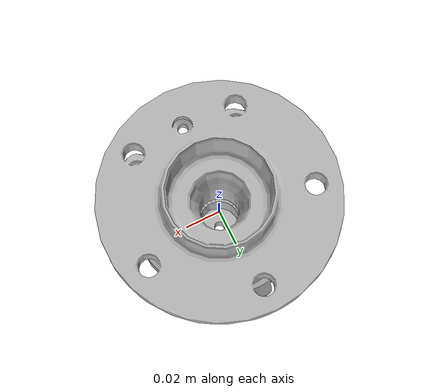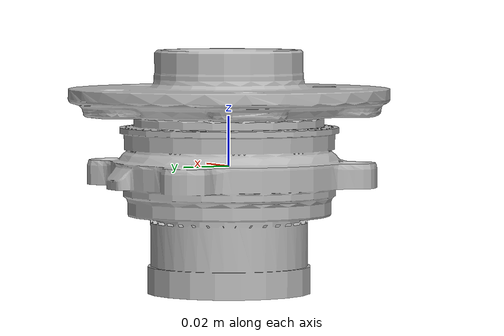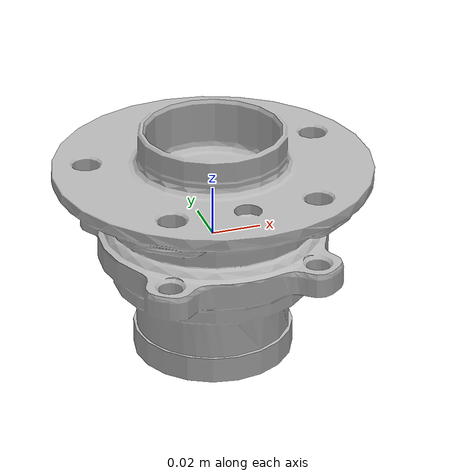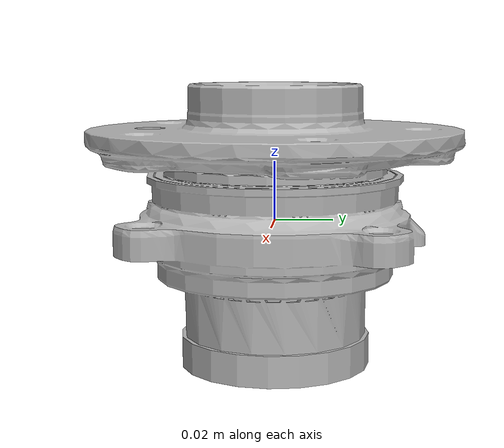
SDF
<?xml version="1.0" ?>
<sdf version="1.5">
  <model name="part">
    <static>true</static>
    <link name="link">
      <pose>0 0 0 0 0 0</pose>
      <collision name="collision">
        <geometry>
          <mesh>
            <uri>model://part/meshes/test_part.dae</uri>
            <scale>2.7 2.7 2.7</scale>
          </mesh>
        </geometry>
      </collision>
      <visual name="visual">
        <geometry>
          <mesh>
            <uri>model://part/meshes/test_part.dae</uri>
            <scale>2.7 2.7 2.7</scale>
          </mesh>
        </geometry>
      </visual>
    </link>
  </model>
</sdf>
